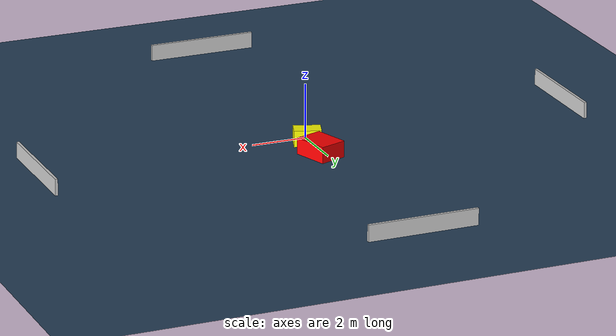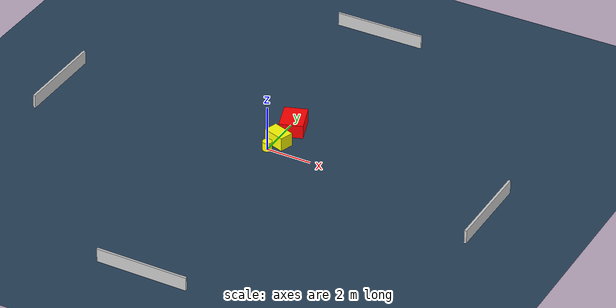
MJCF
<?xml version="1.0" ?>
<mujoco model="generated_environment">
  <option timestep="0.01" integrator="RK4" cone="elliptic"/>
  <default>
    <geom density="1"/>
  </default>
  <asset>
    <texture builtin="gradient" height="3072" name="skybox" rgb1="0.3 0.5 0.7" rgb2="0 0 0" type="skybox" width="512"/>
    <texture builtin="checker" height="300" name="groundplane" rgb1="0.2 0.3 0.4" rgb2="0.1 0.2 0.3" type="2d" width="300"/>
    <material name="groundplane" reflectance="0.2" texrepeat="5 5" texture="groundplane"/>
  </asset>
  <worldbody>
    <light dir="0 0 -1" directional="true" pos="0 0 1.5"/>
    <geom condim="3" friction="0.5 0.005 0.001" material="groundplane" name="floor" pos="0 0 0" size="0 0 0.05" type="plane"/>
    <body name="walls">
      <geom name="wall_1" condim="4" pos="-10.0 0.0 0.3" rgba="0.800000011920929 0.800000011920929 0.800000011920929 1.0" size="0.05 2.0 0.3" type="box"/>
      <geom name="wall_2" condim="4" pos="10.0 0.0 0.3" rgba="0.800000011920929 0.800000011920929 0.800000011920929 1.0" size="0.05 2.0 0.3" type="box"/>
      <geom name="wall_3" condim="4" pos="0.0 -10.0 0.3" rgba="0.800000011920929 0.800000011920929 0.800000011920929 1.0" size="2.0 0.05 0.3" type="box"/>
      <geom name="wall_4" condim="4" pos="0.0 10.0 0.3" rgba="0.800000011920929 0.800000011920929 0.800000011920929 1.0" size="2.0 0.05 0.3" type="box"/>
    </body>
    <body name="robot">
      <joint name="joint_x" type="slide" pos="0 0 0" axis="1 0 0"/>
      <joint name="joint_y" type="slide" pos="0 0 0" axis="0 1 0"/>
      <geom name="robot" type="cylinder" pos="0.0 0.0 0.2" size="0.2 0.2 0.0" mass="5.0" friction="1.0 0.005 0.0001" condim="4" rgba="1.0 1.0 0.0 1.0"/>
    </body>
    <body name="obstacle_1_movable">
      <geom name="obstacle_1_movable" condim="4" pos="0.19415576934533665 0.6072786717864703 0.3" euler="0 0 161.41084952521194" friction="0.0 0.005 0.001" rgba="1.0 1.0 0.0 1.0" size="0.4887522451109357 0.3064734578602734 0.3" type="box" mass="0.1"/>
      <joint type="free"/>
    </body>
    <body name="obstacle_2_static">
      <geom name="obstacle_2_static" condim="4" pos="0.21038965001347837 1.8594384864816598 0.3" euler="0 0 288.81859457072386" friction="0.0 0.005 0.001" rgba="1.0 0.0 0.0 1.0" size="0.6586856684815889 0.506709944805616 0.3" type="box"/>
    </body>
  </worldbody>
  <actuator>
    <motor name="actuator_x" joint="joint_x" gear="1" ctrlrange="-1 1"/>
    <motor name="actuator_y" joint="joint_y" gear="1" ctrlrange="-1 1"/>
  </actuator>
</mujoco>
